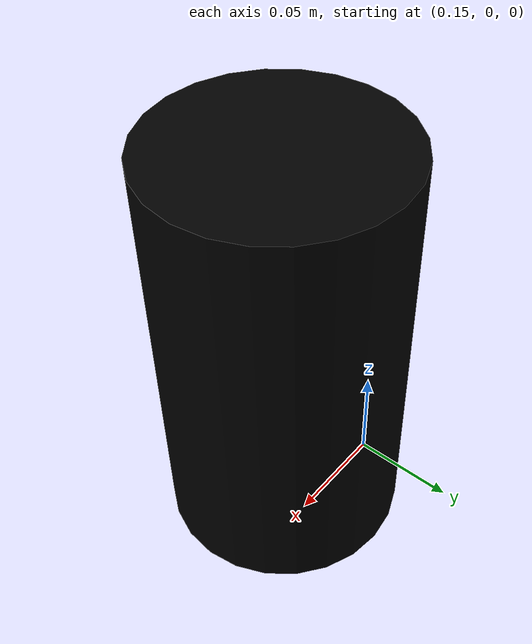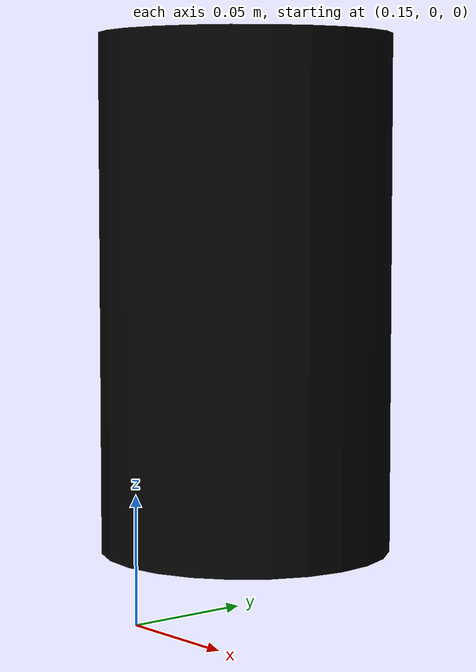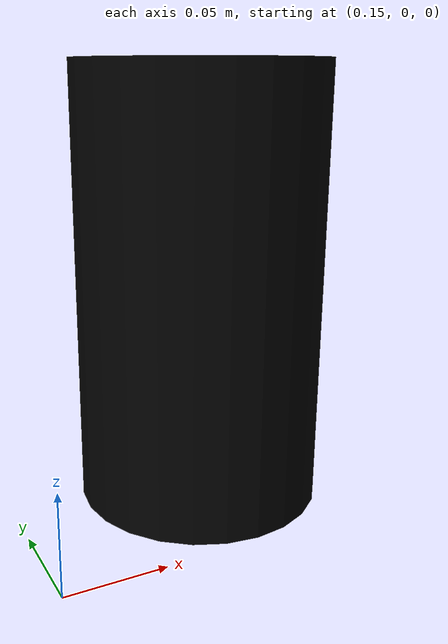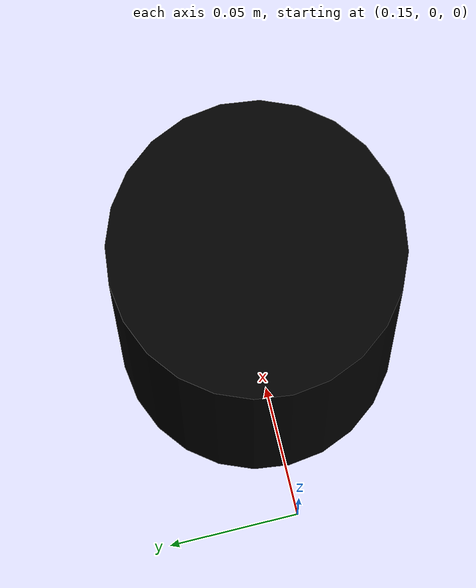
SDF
<?xml version="1.0" encoding="UTF-8"?>
<sdf version="1.5">
	<model name="lidar">
		<link name="lidar_link">
			<inertial>
				<pose>0.215 0 0.13 0 0 0</pose>
				<inertia>
					<ixx>0.001</ixx>
					<ixy>0.000</ixy>
					<ixz>0.000</ixz>
					<iyy>0.001</iyy>
					<iyz>0.000</iyz>
					<izz>0.001</izz>
				</inertia>
				<mass>0.114</mass>
			</inertial>
			<collision name="lidar_collision">
				<pose>0.215 0 0.13 0 0 0</pose>
				<geometry>
					<cylinder>
						<radius>0.0508</radius>
						<length>0.18</length>
					</cylinder>
				</geometry>
			</collision>
			<visual name="lidar_visual">
				<pose>0.215 0 0.13 0 0 0</pose>
				<geometry>
					<cylinder>
						<radius>0.0508</radius>
						<length>0.18</length>
					</cylinder>
				</geometry>
				<material>
					<ambient>0.0 0.0 0.0 1.0</ambient>
					<diffuse>0.0 0.0 0.0 1.0</diffuse>
					<specular>0.0 0.0 0.0 1.0</specular>
					<emissive>0.0 0.0 0.0 1.0</emissive>
				</material>
			</visual>
			<sensor name="lidar" type="ray">
				<pose>0.215 0 0.215 0 0 0</pose>
				<always_on>true</always_on>
				<visualize>true</visualize>
				<update_rate>5</update_rate>
				<ray>
					<scan>
						<horizontal>
							<samples>360</samples>
							<resolution>1.00000</resolution>
							<min_angle>0.000000</min_angle>
							<max_angle>6.280000</max_angle>
						</horizontal>
					</scan>
					<range>
						<min>0.120000</min>
						<max>3.5</max>
						<resolution>0.015000</resolution>
					</range>
					<noise>
						<type>gaussian</type>
						<mean>0.0</mean>
						<stddev>0.01</stddev>
					</noise>
				</ray>
				<plugin name="scan" filename="libgazebo_ros_ray_sensor.so">
					<ros>
						<remapping>~/out:=scan</remapping>
					</ros>
					<output_type>sensor_msgs/LaserScan</output_type>
					<frame_name>lidar_link</frame_name>
				</plugin>
			</sensor>
		</link>
	</model>
</sdf>
